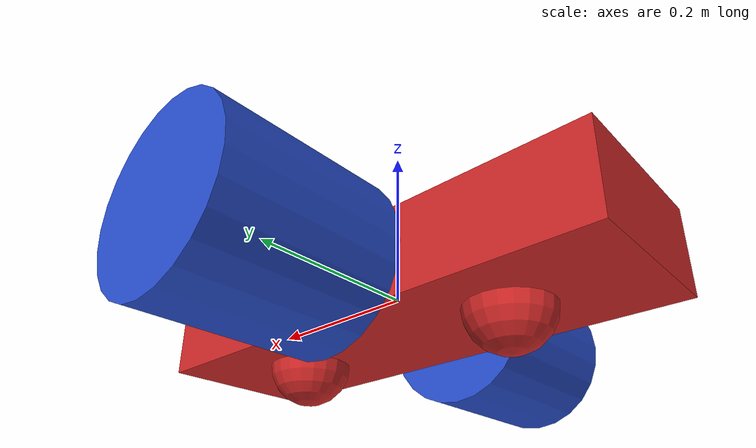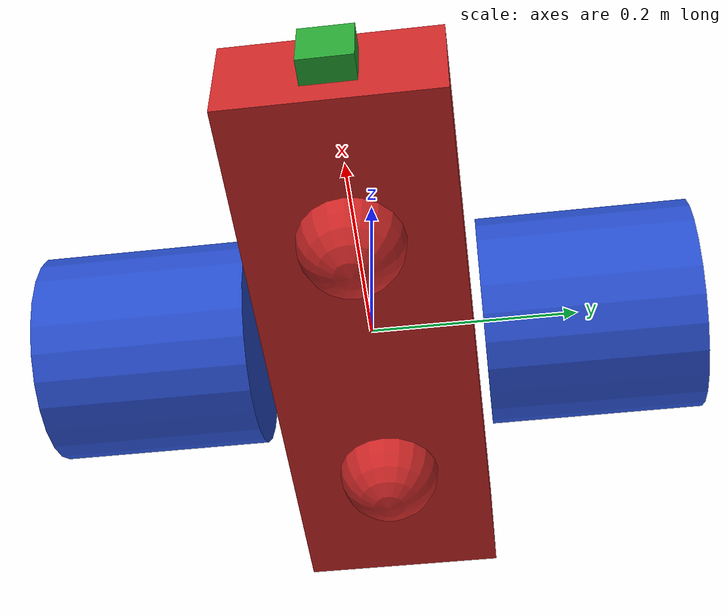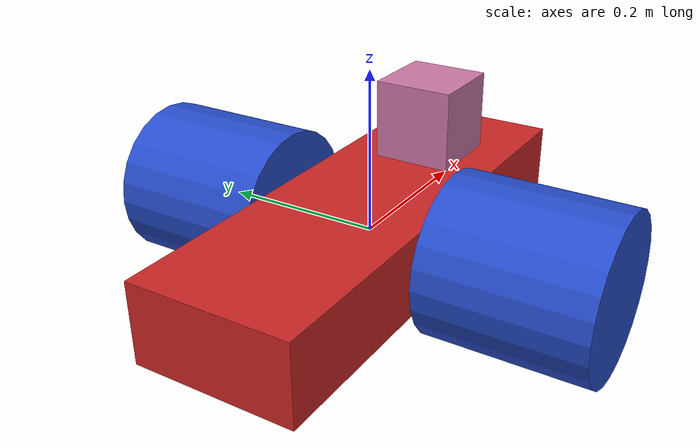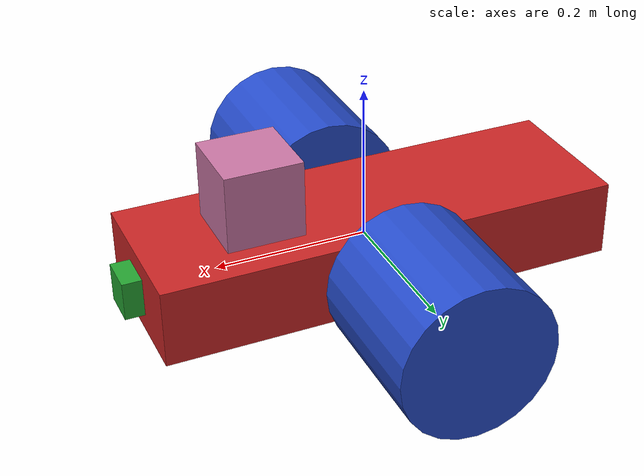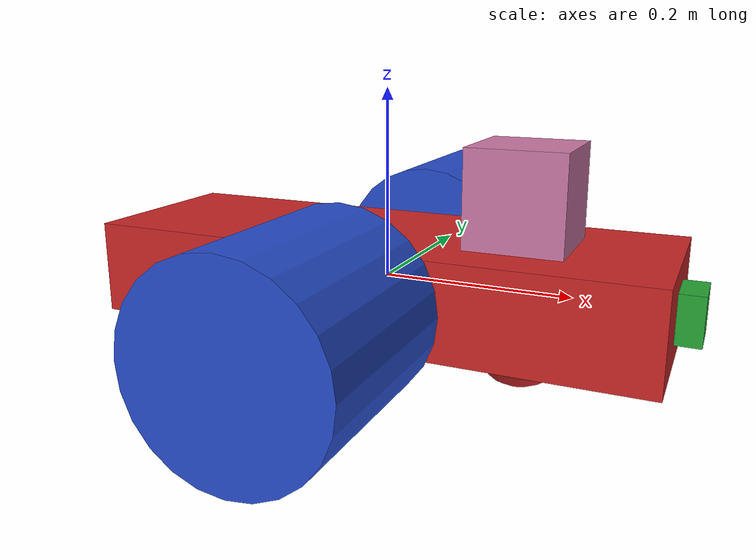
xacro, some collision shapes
<?xml version='1.0'?>

<robot name="my_robot" xmlns:xacro="http://www.ros.org/wiki/xacro">
  <xacro:include filename="$(find my_robot)/urdf/my_robot.gazebo" />
  <link name="robot_footprint"></link>

  <joint name="robot_footprint_joint" type="fixed">
    <origin xyz="0 0 0" rpy="0 0 0" />
    <parent link="robot_footprint"/>
    <child link="chassis" />
  </joint>

  <link name='chassis'>
    <pose>0 0 0.1 0 0 0</pose>

    <inertial>
      <mass value="30.0"/>
      <origin xyz="0.0 0 0" rpy=" 0 0 0"/>
      <inertia
          ixx="0.3" ixy="0" ixz="0"
          iyy="0.3" iyz="0"
          izz="0.3"
      />
    </inertial>

    <collision name='collision'>
      <origin xyz="0 0 0" rpy=" 0 0 0"/>
      <geometry>
        <box size=".6 .2 .1"/>
      </geometry>
    </collision>

    <visual name='chassis_visual'>
      <origin xyz="0 0 0" rpy=" 0 0 0"/>
      <geometry>
        <box size=".6 .2 .1"/>
      </geometry>
    </visual>

    <collision name='back_caster_collision'>
      <origin xyz="-0.15 0 -0.05" rpy=" 0 0 0"/>
      <geometry>
        <sphere radius="0.0499"/>
      </geometry>
    </collision>

    <visual name='back_caster_visual'>
      <origin xyz="-0.15 0 -0.05" rpy=" 0 0 0"/>
      <geometry>
        <sphere radius="0.05"/>
      </geometry>
    </visual>

    <collision name='front_caster_collision'>
      <origin xyz="0.15 0 -0.05" rpy=" 0 0 0"/>
      <geometry>
        <sphere radius="0.0499"/>
      </geometry>
    </collision>

    <visual name='front_caster_visual'>
      <origin xyz="0.15 0 -0.05" rpy=" 0 0 0"/>
      <geometry>
        <sphere radius="0.05"/>
      </geometry>
    </visual>

  </link>

  <link name="left_wheel">

    <inertial>
      <mass value="10.0"/>
      <origin xyz="0.0 0 0" rpy=" 0 1.5705 1.5707"/>
      <inertia
          ixx="0.3" ixy="0" ixz="0"
          iyy="0.3" iyz="0"
          izz="0.3"
      />
    </inertial>

    <collision name='left_wheel_collision'>
      <origin xyz="0 0 0" rpy=" 0 1.5705 1.5707"/>
      <geometry>
        <cylinder radius="0.1" length="0.2"/>
      </geometry>
    </collision>

    <visual name='left_wheel_visual'>
      <origin xyz="0 0 0" rpy=" 0 1.5705 1.5707"/>
      <geometry>
        <cylinder radius="0.1" length="0.2"/>
      </geometry>
    </visual>

  </link>

    <link name="right_wheel">

    <inertial>
      <mass value="10.0"/>
      <origin xyz="0.0 0 0" rpy=" 0 1.5705 1.5707"/>
      <inertia
          ixx="0.3" ixy="0" ixz="0"
          iyy="0.3" iyz="0"
          izz="0.3"
      />
    </inertial>

    <collision name='right_wheel_collision'>
      <origin xyz="0 0 0" rpy=" 0 1.5705 1.5707"/>
      <geometry>
        <cylinder radius="0.1" length="0.2"/>
      </geometry>
    </collision>

    <visual name='right_wheel_visual'>
      <origin xyz="0 0 0" rpy=" 0 1.5705 1.5707"/>
      <geometry>
        <cylinder radius="0.1" length="0.2"/>
      </geometry>
    </visual>

  </link>

  <joint name="left_wheel_hinge" type="continuous">
    <origin xyz="0 0.21 0" rpy="0 0 0" />
    <child link="left_wheel"/>
    <parent link="chassis" />
    <axis xyz="0 1 0" rpy="0 0 0" />
    <limit effort="10000" velocity="1000" />
    <dynamics damping="1.0" friction="1.0" />
  </joint>

  <joint name="right_wheel_hinge" type="continuous">
    <origin xyz="0 -0.21 0" rpy="0 0 0" />
    <child link="right_wheel"/>
    <parent link="chassis" />
    <axis xyz="0 1 0" rpy="0 0 0" />
    <limit effort="10000" velocity="1000" />
    <dynamics damping="1.0" friction="1.0" />
  </joint>

  <link name="camera">

    <inertial>
      <mass value="0.1"/>
      <origin xyz="0 0 0" rpy=" 0 0 0"/>
      <box_inertia m="0.1" x="0.05" y="0.05" z="0.05"/>
      <inertia
          ixx="1e-6" ixy="0" ixz="0"
          iyy="1e-6" iyz="0"
          izz="1e-6"
      />
    </inertial>

    <collision name='camera_collision'>
      <origin xyz="0 0 0" rpy=" 0 0 0"/>
      <geometry>
        <box size="0.05 0.05 0.05"/>
      </geometry>
    </collision>

    <visual name='camera_visual'>
      <origin xyz="0 0 0" rpy=" 0 0 0"/>
      <geometry>
        <box size="0.05 0.05 0.05"/>
      </geometry>
    </visual>

  </link>

  <joint name="camera_joint" type="fixed">
    <origin xyz="0.3 0 0" rpy="0 0 0" />
    <child link="camera"/>
    <parent link="chassis" />
    <axis xyz="0 1 0"/>
  </joint>

  <joint name="camera_optical_joint" type="fixed">
    <origin xyz="0 0 0" rpy="-1.5707 0 -1.5707"/>
    <parent link="camera"/>
    <child link="camera_link_optical"/>
  </joint>

  <link name="camera_link_optical">
  </link>

  <link name="hokuyo">

    <inertial>
      <mass value="1e-5"/>
      <origin xyz="0 0 0" rpy=" 0 0 0"/>
      <inertia
          ixx="1e-6" ixy="0" ixz="0"
          iyy="1e-6" iyz="0"
          izz="1e-6"
      />
    </inertial>

    <collision name='hokuyo_collision'>
      <origin xyz="0 0 0" rpy=" 0 0 0"/>
      <geometry>
        <box size="0.1 0.1 0.1"/>
      </geometry>
    </collision>

    <visual name='hokuyo_visual'>
      <origin xyz="0 0 0" rpy=" 0 0 0"/>
      <geometry>
        <mesh filename="package://my_robot/meshes/hokuyo.dae"/>
      </geometry>
    </visual>

  </link>

  <joint name="hokuyo_joint" type="fixed">
    <origin xyz="0.15 0 0.1" rpy="0 0 0" />
    <child link="hokuyo"/>
    <parent link="chassis" />
    <axis xyz="0 1 0"/>
  </joint>

  <gazebo reference="left_wheel">
    <material>Gazebo/Blue</material>
  </gazebo>

  <gazebo reference="right_wheel">
    <material>Gazebo/Blue</material>
  </gazebo>

  <gazebo reference="chassis">
    <material>Gazebo/Red</material>
  </gazebo>

  <gazebo reference="camera">
    <material>Gazebo/Green</material>
  </gazebo>

</robot>
